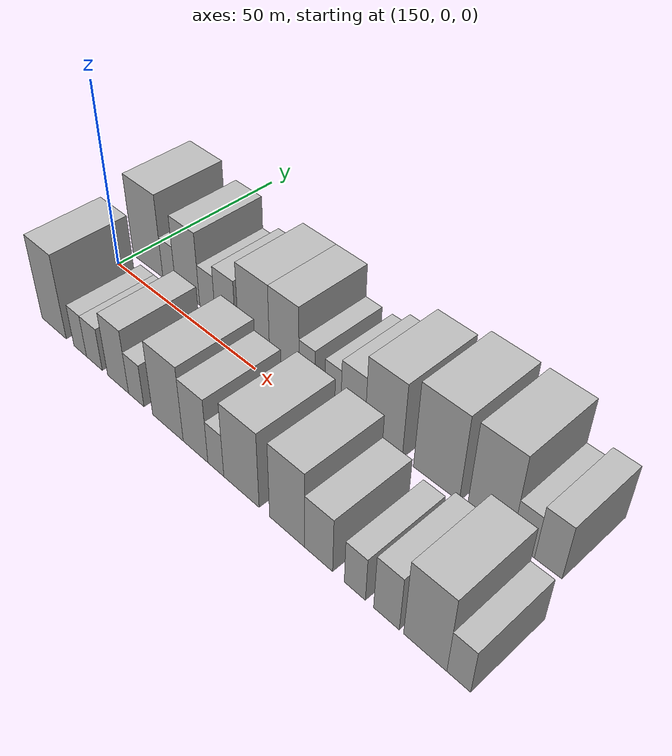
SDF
<sdf version="1.6">
 <world name="default">
  <model name="building_14">
   <static>1</static>
   <pose>155.6550 14.5000 0 0.000000 0.000000 1.570796</pose>
   <link name="link">
    <pose>0 0 12.00 0 0 0</pose>
    <collision name="collision"><geometry><box><size>20.0000 11.7228 24.0000</size></box></geometry></collision>
    <visual name="visual">
     <cast_shadows>0</cast_shadows>
     <geometry><box><size>20.0000 11.7228 24.0000</size></box></geometry>
     <material>
      <script>
       <uri>model://HANNAS_wall/materials/scripts</uri>
       <uri>model://HANNAS_wall/materials/textures</uri>
       <name>vrc/HANNAS_wall</name>
      </script>
     </material>
    </visual>
   </link>
  </model>
  <model name="building_15">
   <static>1</static>
   <pose>163.9676 14.5000 0 0.000000 0.000000 1.570796</pose>
   <link name="link">
    <pose>0 0 6.00 0 0 0</pose>
    <collision name="collision"><geometry><box><size>20.0000 4.9025 12.0000</size></box></geometry></collision>
    <visual name="visual">
     <cast_shadows>0</cast_shadows>
     <geometry><box><size>20.0000 4.9025 12.0000</size></box></geometry>
     <material>
      <script>
       <uri>model://HANNAS_wall/materials/scripts</uri>
       <uri>model://HANNAS_wall/materials/textures</uri>
       <name>vrc/HANNAS_wall</name>
      </script>
     </material>
    </visual>
   </link>
  </model>
  <model name="building_16">
   <static>1</static>
   <pose>170.9178 14.5000 0 0.000000 0.000000 1.570796</pose>
   <link name="link">
    <pose>0 0 10.50 0 0 0</pose>
    <collision name="collision"><geometry><box><size>20.0000 8.9979 21.0000</size></box></geometry></collision>
    <visual name="visual">
     <cast_shadows>0</cast_shadows>
     <geometry><box><size>20.0000 8.9979 21.0000</size></box></geometry>
     <material>
      <script>
       <uri>model://HANNAS_wall/materials/scripts</uri>
       <uri>model://HANNAS_wall/materials/textures</uri>
       <name>vrc/HANNAS_wall</name>
      </script>
     </material>
    </visual>
   </link>
  </model>
  <model name="building_17">
   <static>1</static>
   <pose>178.2170 14.5000 0 0.000000 0.000000 1.570796</pose>
   <link name="link">
    <pose>0 0 6.00 0 0 0</pose>
    <collision name="collision"><geometry><box><size>20.0000 5.6005 12.0000</size></box></geometry></collision>
    <visual name="visual">
     <cast_shadows>0</cast_shadows>
     <geometry><box><size>20.0000 5.6005 12.0000</size></box></geometry>
     <material>
      <script>
       <uri>model://HANNAS_wall/materials/scripts</uri>
       <uri>model://HANNAS_wall/materials/textures</uri>
       <name>vrc/HANNAS_wall</name>
      </script>
     </material>
    </visual>
   </link>
  </model>
  <model name="building_18">
   <static>1</static>
   <pose>184.6122 14.5000 0 0.000000 0.000000 1.570796</pose>
   <link name="link">
    <pose>0 0 7.50 0 0 0</pose>
    <collision name="collision"><geometry><box><size>20.0000 7.1898 15.0000</size></box></geometry></collision>
    <visual name="visual">
     <cast_shadows>0</cast_shadows>
     <geometry><box><size>20.0000 7.1898 15.0000</size></box></geometry>
     <material>
      <script>
       <uri>model://HANNAS_wall/materials/scripts</uri>
       <uri>model://HANNAS_wall/materials/textures</uri>
       <name>vrc/HANNAS_wall</name>
      </script>
     </material>
    </visual>
   </link>
  </model>
  <model name="building_19">
   <static>1</static>
   <pose>194.4474 14.5000 0 0.000000 0.000000 1.570796</pose>
   <link name="link">
    <pose>0 0 10.50 0 0 0</pose>
    <collision name="collision"><geometry><box><size>20.0000 10.4807 21.0000</size></box></geometry></collision>
    <visual name="visual">
     <cast_shadows>0</cast_shadows>
     <geometry><box><size>20.0000 10.4807 21.0000</size></box></geometry>
     <material>
      <script>
       <uri>model://HANNAS_wall/materials/scripts</uri>
       <uri>model://HANNAS_wall/materials/textures</uri>
       <name>vrc/HANNAS_wall</name>
      </script>
     </material>
    </visual>
   </link>
  </model>
  <model name="building_20">
   <static>1</static>
   <pose>204.4156 14.5000 0 0.000000 0.000000 1.570796</pose>
   <link name="link">
    <pose>0 0 10.50 0 0 0</pose>
    <collision name="collision"><geometry><box><size>20.0000 9.4557 21.0000</size></box></geometry></collision>
    <visual name="visual">
     <cast_shadows>0</cast_shadows>
     <geometry><box><size>20.0000 9.4557 21.0000</size></box></geometry>
     <material>
      <script>
       <uri>model://HANNAS_wall/materials/scripts</uri>
       <uri>model://HANNAS_wall/materials/textures</uri>
       <name>vrc/HANNAS_wall</name>
      </script>
     </material>
    </visual>
   </link>
  </model>
  <model name="building_21">
   <static>1</static>
   <pose>211.5923 14.5000 0 0.000000 0.000000 1.570796</pose>
   <link name="link">
    <pose>0 0 6.00 0 0 0</pose>
    <collision name="collision"><geometry><box><size>20.0000 4.8976 12.0000</size></box></geometry></collision>
    <visual name="visual">
     <cast_shadows>0</cast_shadows>
     <geometry><box><size>20.0000 4.8976 12.0000</size></box></geometry>
     <material>
      <script>
       <uri>model://HANNAS_wall/materials/scripts</uri>
       <uri>model://HANNAS_wall/materials/textures</uri>
       <name>vrc/HANNAS_wall</name>
      </script>
     </material>
    </visual>
   </link>
  </model>
  <model name="building_22">
   <static>1</static>
   <pose>219.4458 14.5000 0 0.000000 0.000000 1.570796</pose>
   <link name="link">
    <pose>0 0 6.00 0 0 0</pose>
    <collision name="collision"><geometry><box><size>20.0000 4.8096 12.0000</size></box></geometry></collision>
    <visual name="visual">
     <cast_shadows>0</cast_shadows>
     <geometry><box><size>20.0000 4.8096 12.0000</size></box></geometry>
     <material>
      <script>
       <uri>model://HANNAS_wall/materials/scripts</uri>
       <uri>model://HANNAS_wall/materials/textures</uri>
       <name>vrc/HANNAS_wall</name>
      </script>
     </material>
    </visual>
   </link>
  </model>
  <model name="building_23">
   <static>1</static>
   <pose>225.3727 14.5000 0 0.000000 0.000000 1.570796</pose>
   <link name="link">
    <pose>0 0 7.50 0 0 0</pose>
    <collision name="collision"><geometry><box><size>20.0000 7.0442 15.0000</size></box></geometry></collision>
    <visual name="visual">
     <cast_shadows>0</cast_shadows>
     <geometry><box><size>20.0000 7.0442 15.0000</size></box></geometry>
     <material>
      <script>
       <uri>model://HANNAS_wall/materials/scripts</uri>
       <uri>model://HANNAS_wall/materials/textures</uri>
       <name>vrc/HANNAS_wall</name>
      </script>
     </material>
    </visual>
   </link>
  </model>
  <model name="building_24">
   <static>1</static>
   <pose>234.1140 14.5000 0 0.000000 0.000000 1.570796</pose>
   <link name="link">
    <pose>0 0 10.50 0 0 0</pose>
    <collision name="collision"><geometry><box><size>20.0000 10.4384 21.0000</size></box></geometry></collision>
    <visual name="visual">
     <cast_shadows>0</cast_shadows>
     <geometry><box><size>20.0000 10.4384 21.0000</size></box></geometry>
     <material>
      <script>
       <uri>model://HANNAS_wall/materials/scripts</uri>
       <uri>model://HANNAS_wall/materials/textures</uri>
       <name>vrc/HANNAS_wall</name>
      </script>
     </material>
    </visual>
   </link>
  </model>
  <model name="building_25">
   <static>1</static>
   <pose>248.3089 14.5000 0 0.000000 0.000000 1.570796</pose>
   <link name="link">
    <pose>0 0 12.00 0 0 0</pose>
    <collision name="collision"><geometry><box><size>20.0000 11.9514 24.0000</size></box></geometry></collision>
    <visual name="visual">
     <cast_shadows>0</cast_shadows>
     <geometry><box><size>20.0000 11.9514 24.0000</size></box></geometry>
     <material>
      <script>
       <uri>model://HANNAS_wall/materials/scripts</uri>
       <uri>model://HANNAS_wall/materials/textures</uri>
       <name>vrc/HANNAS_wall</name>
      </script>
     </material>
    </visual>
   </link>
  </model>
  <model name="building_26">
   <static>1</static>
   <pose>261.7232 14.5000 0 0.000000 0.000000 1.570796</pose>
   <link name="link">
    <pose>0 0 12.00 0 0 0</pose>
    <collision name="collision"><geometry><box><size>20.0000 10.8771 24.0000</size></box></geometry></collision>
    <visual name="visual">
     <cast_shadows>0</cast_shadows>
     <geometry><box><size>20.0000 10.8771 24.0000</size></box></geometry>
     <material>
      <script>
       <uri>model://HANNAS_wall/materials/scripts</uri>
       <uri>model://HANNAS_wall/materials/textures</uri>
       <name>vrc/HANNAS_wall</name>
      </script>
     </material>
    </visual>
   </link>
  </model>
  <model name="building_27">
   <static>1</static>
   <pose>269.7710 14.5000 0 0.000000 0.000000 1.570796</pose>
   <link name="link">
    <pose>0 0 6.00 0 0 0</pose>
    <collision name="collision"><geometry><box><size>20.0000 5.2185 12.0000</size></box></geometry></collision>
    <visual name="visual">
     <cast_shadows>0</cast_shadows>
     <geometry><box><size>20.0000 5.2185 12.0000</size></box></geometry>
     <material>
      <script>
       <uri>model://HANNAS_wall/materials/scripts</uri>
       <uri>model://HANNAS_wall/materials/textures</uri>
       <name>vrc/HANNAS_wall</name>
      </script>
     </material>
    </visual>
   </link>
  </model>
  <model name="building_28">
   <static>1</static>
   <pose>275.4956 14.5000 0 0.000000 0.000000 1.570796</pose>
   <link name="link">
    <pose>0 0 7.50 0 0 0</pose>
    <collision name="collision"><geometry><box><size>20.0000 6.2307 15.0000</size></box></geometry></collision>
    <visual name="visual">
     <cast_shadows>0</cast_shadows>
     <geometry><box><size>20.0000 6.2307 15.0000</size></box></geometry>
     <material>
      <script>
       <uri>model://HANNAS_wall/materials/scripts</uri>
       <uri>model://HANNAS_wall/materials/textures</uri>
       <name>vrc/HANNAS_wall</name>
      </script>
     </material>
    </visual>
   </link>
  </model>
  <model name="building_44">
   <static>1</static>
   <pose>158.8207 -14.5000 0 0.000000 0.000000 1.570796</pose>
   <link name="link">
    <pose>0 0 12.00 0 0 0</pose>
    <collision name="collision"><geometry><box><size>20.0000 9.7227 24.0000</size></box></geometry></collision>
    <visual name="visual">
     <cast_shadows>0</cast_shadows>
     <geometry><box><size>20.0000 9.7227 24.0000</size></box></geometry>
     <material>
      <script>
       <uri>model://HANNAS_wall/materials/scripts</uri>
       <uri>model://HANNAS_wall/materials/textures</uri>
       <name>vrc/HANNAS_wall</name>
      </script>
     </material>
    </visual>
   </link>
  </model>
  <model name="building_45">
   <static>1</static>
   <pose>169.1161 -14.5000 0 0.000000 0.000000 1.570796</pose>
   <link name="link">
    <pose>0 0 6.00 0 0 0</pose>
    <collision name="collision"><geometry><box><size>20.0000 4.8681 12.0000</size></box></geometry></collision>
    <visual name="visual">
     <cast_shadows>0</cast_shadows>
     <geometry><box><size>20.0000 4.8681 12.0000</size></box></geometry>
     <material>
      <script>
       <uri>model://HANNAS_wall/materials/scripts</uri>
       <uri>model://HANNAS_wall/materials/textures</uri>
       <name>vrc/HANNAS_wall</name>
      </script>
     </material>
    </visual>
   </link>
  </model>
  <model name="building_46">
   <static>1</static>
   <pose>174.5121 -14.5000 0 0.000000 0.000000 1.570796</pose>
   <link name="link">
    <pose>0 0 6.00 0 0 0</pose>
    <collision name="collision"><geometry><box><size>20.0000 5.9239 12.0000</size></box></geometry></collision>
    <visual name="visual">
     <cast_shadows>0</cast_shadows>
     <geometry><box><size>20.0000 5.9239 12.0000</size></box></geometry>
     <material>
      <script>
       <uri>model://HANNAS_wall/materials/scripts</uri>
       <uri>model://HANNAS_wall/materials/textures</uri>
       <name>vrc/HANNAS_wall</name>
      </script>
     </material>
    </visual>
   </link>
  </model>
  <model name="building_47">
   <static>1</static>
   <pose>183.2656 -14.5000 0 0.000000 0.000000 1.570796</pose>
   <link name="link">
    <pose>0 0 9.00 0 0 0</pose>
    <collision name="collision"><geometry><box><size>20.0000 7.5832 18.0000</size></box></geometry></collision>
    <visual name="visual">
     <cast_shadows>0</cast_shadows>
     <geometry><box><size>20.0000 7.5832 18.0000</size></box></geometry>
     <material>
      <script>
       <uri>model://HANNAS_wall/materials/scripts</uri>
       <uri>model://HANNAS_wall/materials/textures</uri>
       <name>vrc/HANNAS_wall</name>
      </script>
     </material>
    </visual>
   </link>
  </model>
  <model name="building_48">
   <static>1</static>
   <pose>189.7431 -14.5000 0 0.000000 0.000000 1.570796</pose>
   <link name="link">
    <pose>0 0 6.00 0 0 0</pose>
    <collision name="collision"><geometry><box><size>20.0000 5.3719 12.0000</size></box></geometry></collision>
    <visual name="visual">
     <cast_shadows>0</cast_shadows>
     <geometry><box><size>20.0000 5.3719 12.0000</size></box></geometry>
     <material>
      <script>
       <uri>model://HANNAS_wall/materials/scripts</uri>
       <uri>model://HANNAS_wall/materials/textures</uri>
       <name>vrc/HANNAS_wall</name>
      </script>
     </material>
    </visual>
   </link>
  </model>
  <model name="building_49">
   <static>1</static>
   <pose>200.5272 -14.5000 0 0.000000 0.000000 1.570796</pose>
   <link name="link">
    <pose>0 0 10.50 0 0 0</pose>
    <collision name="collision"><geometry><box><size>20.0000 10.1963 21.0000</size></box></geometry></collision>
    <visual name="visual">
     <cast_shadows>0</cast_shadows>
     <geometry><box><size>20.0000 10.1963 21.0000</size></box></geometry>
     <material>
      <script>
       <uri>model://HANNAS_wall/materials/scripts</uri>
       <uri>model://HANNAS_wall/materials/textures</uri>
       <name>vrc/HANNAS_wall</name>
      </script>
     </material>
    </visual>
   </link>
  </model>
  <model name="building_50">
   <static>1</static>
   <pose>209.5545 -14.5000 0 0.000000 0.000000 1.570796</pose>
   <link name="link">
    <pose>0 0 9.00 0 0 0</pose>
    <collision name="collision"><geometry><box><size>20.0000 7.8584 18.0000</size></box></geometry></collision>
    <visual name="visual">
     <cast_shadows>0</cast_shadows>
     <geometry><box><size>20.0000 7.8584 18.0000</size></box></geometry>
     <material>
      <script>
       <uri>model://HANNAS_wall/materials/scripts</uri>
       <uri>model://HANNAS_wall/materials/textures</uri>
       <name>vrc/HANNAS_wall</name>
      </script>
     </material>
    </visual>
   </link>
  </model>
  <model name="building_51">
   <static>1</static>
   <pose>215.9348 -14.5000 0 0.000000 0.000000 1.570796</pose>
   <link name="link">
    <pose>0 0 6.00 0 0 0</pose>
    <collision name="collision"><geometry><box><size>20.0000 4.9022 12.0000</size></box></geometry></collision>
    <visual name="visual">
     <cast_shadows>0</cast_shadows>
     <geometry><box><size>20.0000 4.9022 12.0000</size></box></geometry>
     <material>
      <script>
       <uri>model://HANNAS_wall/materials/scripts</uri>
       <uri>model://HANNAS_wall/materials/textures</uri>
       <name>vrc/HANNAS_wall</name>
      </script>
     </material>
    </visual>
   </link>
  </model>
  <model name="building_52">
   <static>1</static>
   <pose>223.6233 -14.5000 0 0.000000 0.000000 1.570796</pose>
   <link name="link">
    <pose>0 0 10.50 0 0 0</pose>
    <collision name="collision"><geometry><box><size>20.0000 10.4747 21.0000</size></box></geometry></collision>
    <visual name="visual">
     <cast_shadows>0</cast_shadows>
     <geometry><box><size>20.0000 10.4747 21.0000</size></box></geometry>
     <material>
      <script>
       <uri>model://HANNAS_wall/materials/scripts</uri>
       <uri>model://HANNAS_wall/materials/textures</uri>
       <name>vrc/HANNAS_wall</name>
      </script>
     </material>
    </visual>
   </link>
  </model>
  <model name="building_53">
   <static>1</static>
   <pose>236.7152 -14.5000 0 0.000000 0.000000 1.570796</pose>
   <link name="link">
    <pose>0 0 10.50 0 0 0</pose>
    <collision name="collision"><geometry><box><size>20.0000 9.7091 21.0000</size></box></geometry></collision>
    <visual name="visual">
     <cast_shadows>0</cast_shadows>
     <geometry><box><size>20.0000 9.7091 21.0000</size></box></geometry>
     <material>
      <script>
       <uri>model://HANNAS_wall/materials/scripts</uri>
       <uri>model://HANNAS_wall/materials/textures</uri>
       <name>vrc/HANNAS_wall</name>
      </script>
     </material>
    </visual>
   </link>
  </model>
  <model name="building_54">
   <static>1</static>
   <pose>245.2711 -14.5000 0 0.000000 0.000000 1.570796</pose>
   <link name="link">
    <pose>0 0 7.50 0 0 0</pose>
    <collision name="collision"><geometry><box><size>20.0000 7.4027 15.0000</size></box></geometry></collision>
    <visual name="visual">
     <cast_shadows>0</cast_shadows>
     <geometry><box><size>20.0000 7.4027 15.0000</size></box></geometry>
     <material>
      <script>
       <uri>model://HANNAS_wall/materials/scripts</uri>
       <uri>model://HANNAS_wall/materials/textures</uri>
       <name>vrc/HANNAS_wall</name>
      </script>
     </material>
    </visual>
   </link>
  </model>
  <model name="building_55">
   <static>1</static>
   <pose>254.6294 -14.5000 0 0.000000 0.000000 1.570796</pose>
   <link name="link">
    <pose>0 0 6.00 0 0 0</pose>
    <collision name="collision"><geometry><box><size>20.0000 5.3138 12.0000</size></box></geometry></collision>
    <visual name="visual">
     <cast_shadows>0</cast_shadows>
     <geometry><box><size>20.0000 5.3138 12.0000</size></box></geometry>
     <material>
      <script>
       <uri>model://HANNAS_wall/materials/scripts</uri>
       <uri>model://HANNAS_wall/materials/textures</uri>
       <name>vrc/HANNAS_wall</name>
      </script>
     </material>
    </visual>
   </link>
  </model>
  <model name="building_56">
   <static>1</static>
   <pose>262.3837 -14.5000 0 0.000000 0.000000 1.570796</pose>
   <link name="link">
    <pose>0 0 7.50 0 0 0</pose>
    <collision name="collision"><geometry><box><size>20.0000 6.1948 15.0000</size></box></geometry></collision>
    <visual name="visual">
     <cast_shadows>0</cast_shadows>
     <geometry><box><size>20.0000 6.1948 15.0000</size></box></geometry>
     <material>
      <script>
       <uri>model://HANNAS_wall/materials/scripts</uri>
       <uri>model://HANNAS_wall/materials/textures</uri>
       <name>vrc/HANNAS_wall</name>
      </script>
     </material>
    </visual>
   </link>
  </model>
  <model name="building_57">
   <static>1</static>
   <pose>271.4275 -14.5000 0 0.000000 0.000000 1.570796</pose>
   <link name="link">
    <pose>0 0 10.50 0 0 0</pose>
    <collision name="collision"><geometry><box><size>20.0000 9.8927 21.0000</size></box></geometry></collision>
    <visual name="visual">
     <cast_shadows>0</cast_shadows>
     <geometry><box><size>20.0000 9.8927 21.0000</size></box></geometry>
     <material>
      <script>
       <uri>model://HANNAS_wall/materials/scripts</uri>
       <uri>model://HANNAS_wall/materials/textures</uri>
       <name>vrc/HANNAS_wall</name>
      </script>
     </material>
    </visual>
   </link>
  </model>
  <model name="building_58">
   <static>1</static>
   <pose>278.9773 -14.5000 0 0.000000 0.000000 1.570796</pose>
   <link name="link">
    <pose>0 0 6.00 0 0 0</pose>
    <collision name="collision"><geometry><box><size>20.0000 5.2070 12.0000</size></box></geometry></collision>
    <visual name="visual">
     <cast_shadows>0</cast_shadows>
     <geometry><box><size>20.0000 5.2070 12.0000</size></box></geometry>
     <material>
      <script>
       <uri>model://HANNAS_wall/materials/scripts</uri>
       <uri>model://HANNAS_wall/materials/textures</uri>
       <name>vrc/HANNAS_wall</name>
      </script>
     </material>
    </visual>
   </link>
  </model>
 </world>
</sdf>
